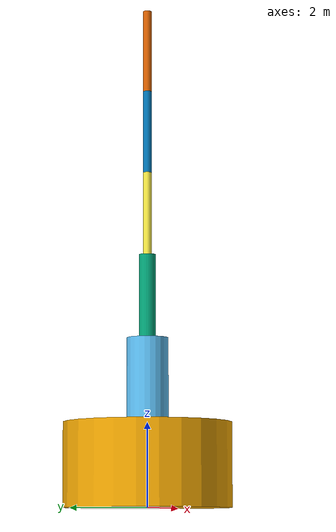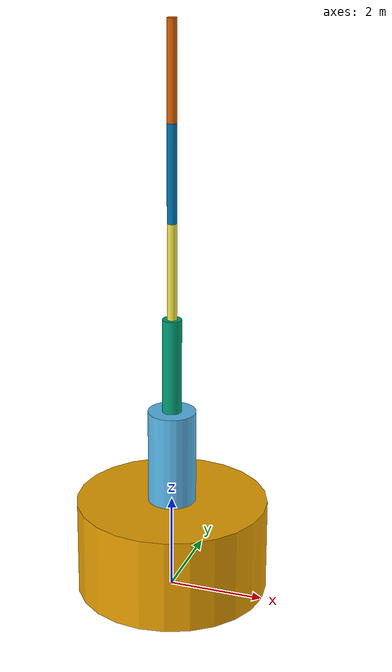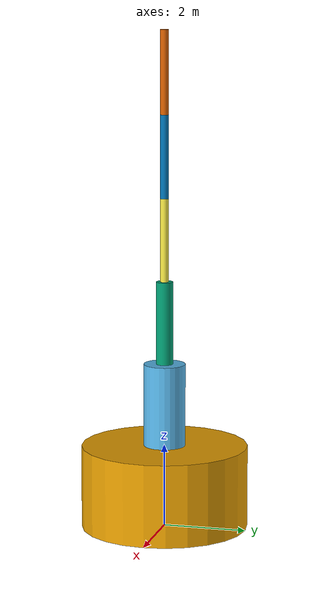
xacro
<?xml version="1.0" ?>

<robot name="pyarm" xmlns:xacro="http://www.ros.org/wiki/xacro">
    <link name="base_link">
        <visual>
            <origin rpy="0 0 0" xyz="0 0 1"/>
            <geometry>
                <cylinder radius="2" length="2"/>
            </geometry>
        </visual>
    </link>

    <joint name="waist_joint" type="revolute">
        <axis xyz="0 0 1"/>
        <limit effort="1000" lower="-3.14" upper="3.14" velocity="0.5"/>
        <origin rpy="0 0 0" xyz="0 0 2"/>
        <parent link="base_link"/>
        <child link="shoulder_link"/>
    </joint>

    <link name="shoulder_link">
        <visual>
            <origin rpy="0 0 0" xyz="0 0 1" />
            <geometry>
                <cylinder radius="0.5" length="2"/>
            </geometry>
        </visual>
    </link>

    <joint name="shoulder_joint" type="revolute">
        <axis xyz="0 1 0"/>
        <limit effort="1000" lower="-1.57" upper="3.14" velocity="0.5"/>
        <origin rpy="0 0 0" xyz="0 0 2"/>
        <parent link="shoulder_link"/>
        <child link="elbow_link"/>
    </joint>

    <link name="elbow_link">
        <visual>
            <origin rpy="0 0 0" xyz="0 0 1"/>
            <geometry>
                <cylinder radius="0.2" length="2"/>
            </geometry>
        </visual>
    </link>

    <joint name="elbow_joint" type="revolute">
        <axis xyz="0 1 0"/>
        <limit effort="1000" lower="-3.14" upper="3.14" velocity="0.5"/>
        <origin rpy="0 0 0" xyz="0 0 2"/>
        <parent link="elbow_link"/>
        <child link="wrist_roll_link"/>
    </joint>

    <link name="wrist_roll_link">
        <visual>
            <origin rpy="0 0 0" xyz="0 0 1"/>
            <geometry>
                <cylinder radius="0.1" length="2"/>
            </geometry>
        </visual>
    </link>

    <joint name="wrist_roll_joint" type="revolute">
        <axis xyz="0 0 1"/>
        <limit effort="1000" lower="-3.14" upper="3.14" velocity="0.5"/>
        <origin rpy="0 0 0" xyz="0 0 2"/>
        <parent link="wrist_roll_link"/>
        <child link="wrist_pitch_link"/>
    </joint>

    <link name="wrist_pitch_link">
        <visual>
            <origin rpy="0 0 0" xyz="0 0 1"/>
            <geometry>
                <cylinder radius="0.1" length="2"/>
            </geometry>
        </visual>
    </link>

    <joint name="wrist_pitch_joint" type="revolute">
        <axis xyz="0 1 0"/>
        <limit effort="1000" lower="-3.14" upper="3.14" velocity="0.5"/>
        <origin rpy="0 0 0" xyz="0 0 2"/>
        <parent link="wrist_pitch_link"/>
        <child link="final_link"/>
    </joint>

    <link name="final_link">
        <visual>
            <origin rpy="0 0 0" xyz="0 0 1"/>
            <geometry>
                <cylinder radius="0.1" length="2"/>
            </geometry>
        </visual>
    </link>
</robot>
